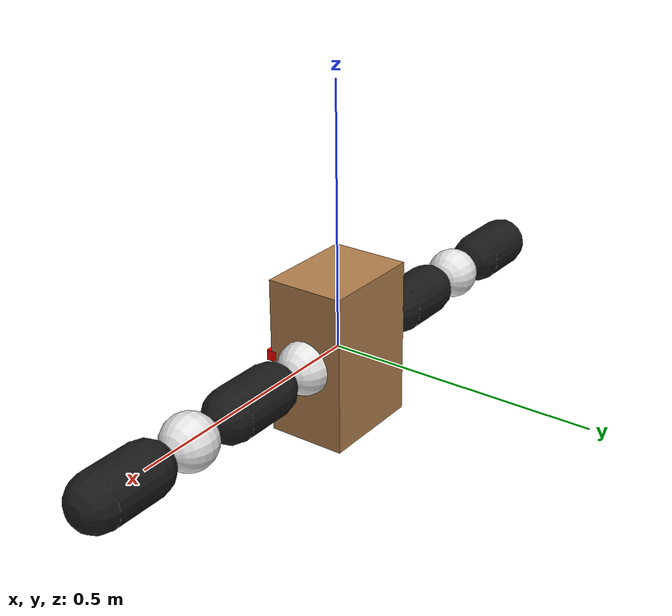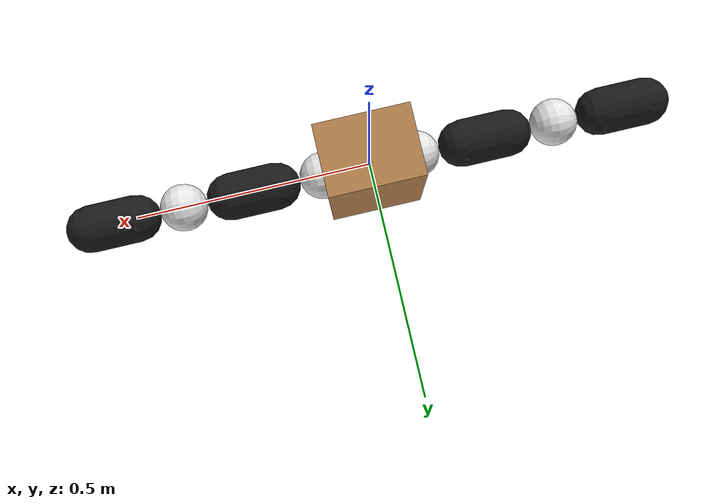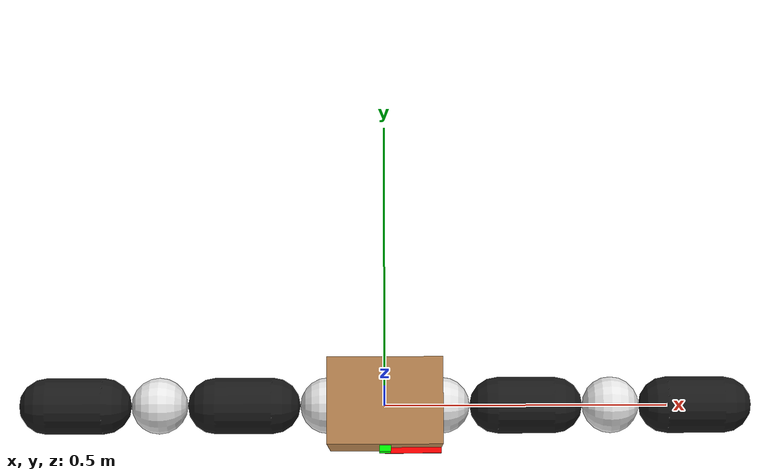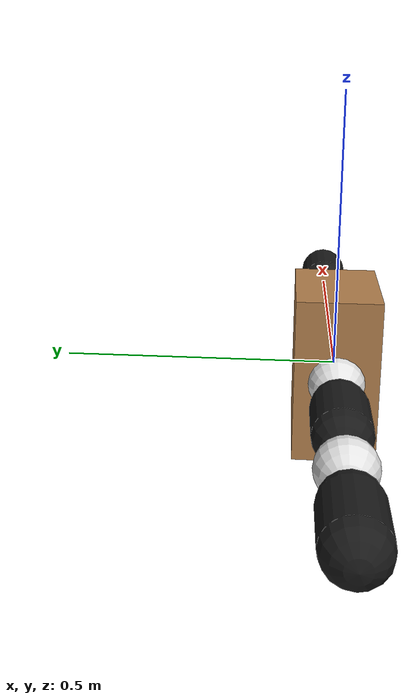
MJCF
<mujoco model="planar_hand">
<!-- Copyright (c) 2023 Robotics and AI Institute LLC dba RAI Institute. All rights reserved. -->
  <compiler angle="radian" autolimits="true"/>

  <option gravity="0 0 -9.81" timestep="0.01" />

  <asset>
    <texture name="blue_grid" type="2d" builtin="checker" rgb1=".02 .14 .44" rgb2=".27 .55 1" width="300" height="300" mark="edge" markrgb="1 1 1"/>
    <material name="blue_grid" texture="blue_grid" texrepeat="1 1" texuniform="true" reflectance=".2"/>
    <material name="object" rgba=".7 .5 .3 1"/>
    <material name="white" rgba="0.9 .9 .9 1"/>
    <material name="black" rgba="0.1 .1 .1 1"/>
  </asset>

  <default>
    <material specular="0.5" shininess="0.95"/>
    <default class="finger">
      <joint axis="0 1 0" damping="2"/>
      <position kp="25" forcerange="-1000 1000"/>
      <default class="left_shoulder">
        <joint range="-1.57 0"/>
        <position ctrlrange="-1.57 0"/>
      </default>
      <default class="right_shoulder">
        <joint range="0 1.57"/>
        <position ctrlrange="0 1.57"/>
      </default>
      <default class="left_elbow">
        <joint range="-2.4 0"/>
        <position ctrlrange="-2.4 0"/>
      </default>
      <default class="right_elbow">
        <joint range="0 2.4"/>
        <position ctrlrange="0 2.4"/>
      </default>
    </default>
  </default>

  <worldbody>
    <body name="box" pos="0.0 0.0 0.00">
      <geom mass="0.4" size="0.10 0.075 0.15" type="box" material="object"/>
      <geom mass="0" size="0.05 0.01 0.01" pos="0.05 -0.075 0" type="box" rgba="1 0 0 1"/>
      <geom mass="0" size="0.01 0.01 0.05" pos="0.0 -0.075 0.05" type="box" rgba="0 1 0 1"/>
      <site pos="0 0 0" name="site_box"/>
      <joint axis="1 0 0" name="box:slide_object_x" type="slide" range="-5 5"/>
      <joint axis="0 0 1" name="box:slide_object_z" type="slide" range="-5 5"/>
      <joint axis="0 -1 0" name="box:hinge_object_y" type="hinge"/>
    </body>

    <body name="robot_base" pos="0.0 0.0 0.0">
      <geom mass="1.0" pos="0.1 0.0 0.0" quat="0.5 0 0.5 0" size="0.05" type="sphere" material="white"/>
      <geom mass="1.0" pos="-0.1 0.0 0.0" quat="0.5 0 0.5 0" size="0.05" type="sphere" material="white"/>
              <body name="body_left_shoulder" pos="0.10 0 0">
        <geom mass="0.5" pos="0.15 0 0" quat="0.5 0 0.5 0" size="0.05 0.05" type="capsule" material="black"/>
        <site pos="0.15 0 0" name="site_left_shoulder"/>
        <geom mass="0.5" pos="0.30 0 0" quat="0.5 0 0.5 0" size="0.05" type="sphere" material="white"/>
        <joint name="joint_left_shoulder" class="left_shoulder"/>
        <body name="body_left_elbow" pos="0.30 0 0">
          <geom mass="0.5" pos="0.15 0 0" quat="0.5 0 0.5 0" size="0.05 0.05" type="capsule" material="black"/>
          <site pos="0.15 0 0" name="site_left_elbow"/>
          <joint name="joint_left_elbow" class="left_elbow"/>
        </body>
      </body>
      <body name="body_right_shoulder" pos="-0.10 0 0">
        <geom mass="0.5" pos="-0.15 0 0" quat="0.5 0 0.5 0" size="0.05 0.05" type="capsule" material="black"/>
        <site pos="-0.15 0 0" name="site_right_shoulder"/>
        <geom mass="0.5" pos="-0.30 0 0" quat="0.5 0 0.5 0" size="0.05" type="sphere" material="white"/>
        <joint name="joint_right_shoulder" class="right_shoulder"/>
        <body name="body_right_elbow" pos="-0.30 0 0">
          <geom mass="0.5" pos="-0.15 0 0" quat="0.5 0 0.5 0" size="0.05 0.05" type="capsule" material="black"/>
          <site pos="-0.15 0 0" name="site_right_elbow"/>
          <joint name="joint_right_elbow" class="right_elbow"/>
        </body>
      </body>
    </body>
  </worldbody>

  <keyframe>
    <!-- [object_xytheta arm_joint_angles] -->
    <key name="home" qpos="0 0 0  0 0 0 0" />
  </keyframe>

  <sensor>
    <framepos name="sensor_left_thigh" objtype="site" objname="site_left_shoulder" reftype="site" refname="site_box"/>
    <framepos name="sensor_left_calf" objtype="site" objname="site_left_elbow" reftype="site" refname="site_box"/>
    <framepos name="sensor_right_thigh" objtype="site" objname="site_right_shoulder" reftype="site" refname="site_box"/>
    <framepos name="sensor_right_calf" objtype="site" objname="site_right_elbow" reftype="site" refname="site_box"/>
  </sensor>

  <actuator>
    <position name="actuator_left_thigh" joint="joint_left_shoulder" class="left_shoulder"/>
    <position name="actuator_left_calf" joint="joint_left_elbow" class="left_elbow"/>
    <position name="actuator_right_thigh" joint="joint_right_shoulder" class="right_shoulder"/>
    <position name="actuator_right_calf" joint="joint_right_elbow" class="right_elbow"/>
  </actuator>
</mujoco>
